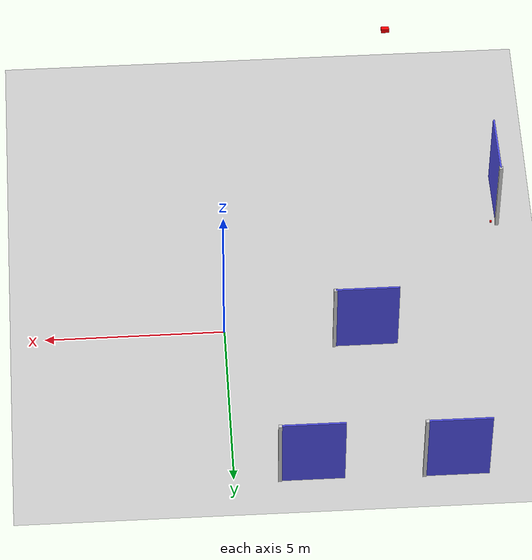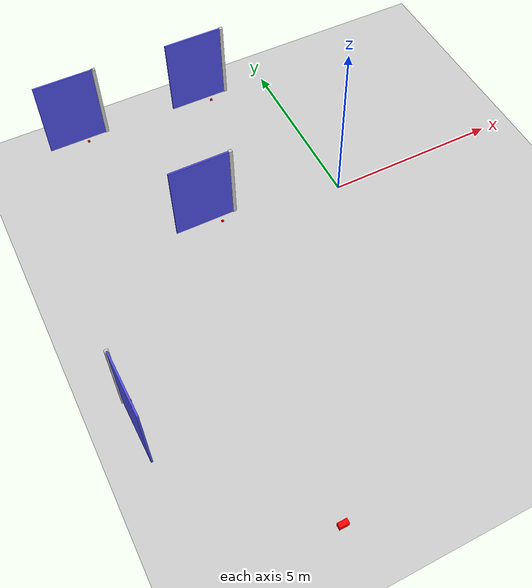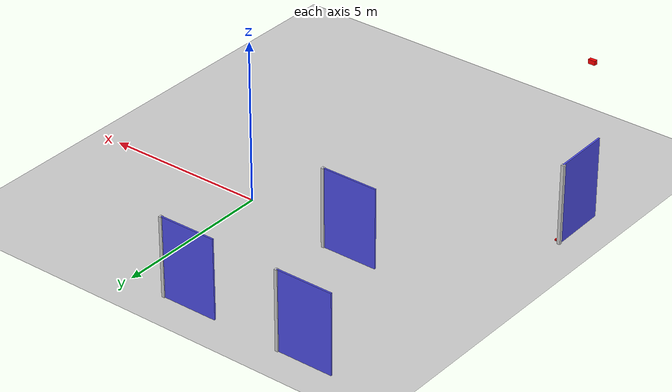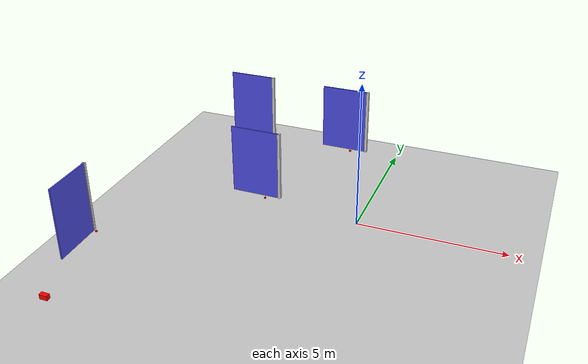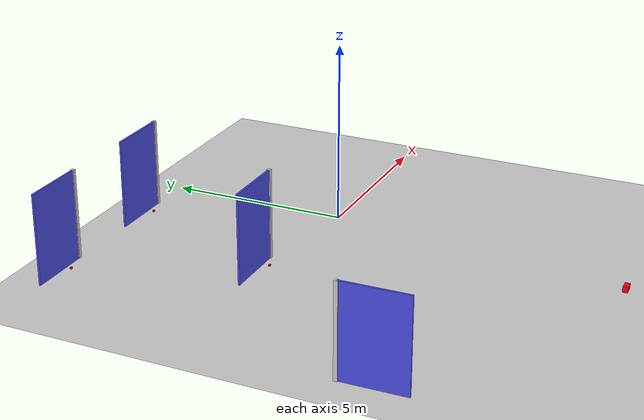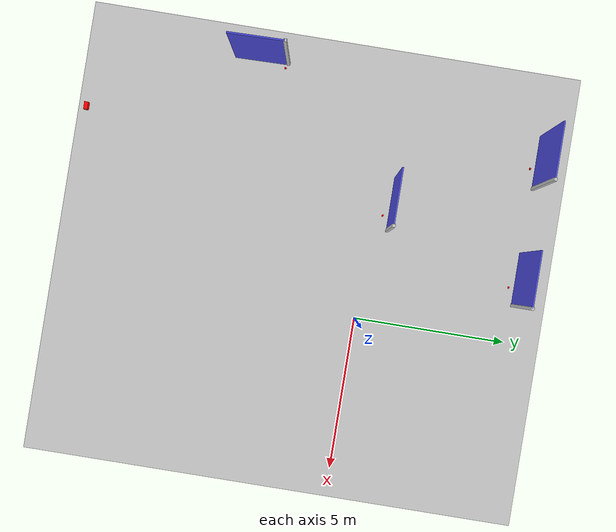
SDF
<sdf version="1.7">
 <world name="default">
  <model name="ground_plane">
   <static>1</static>
   <link name="link">
    <collision name="collision">
     <geometry><plane><normal>0 0 1</normal><size>100 100</size></plane></geometry>
     <surface><friction><ode><mu>100</mu><mu2>50</mu2></ode></friction></surface>
    </collision>
    <visual name="visual">
     <cast_shadows>0</cast_shadows>
     <geometry><plane><normal>0 0 1</normal><size>100 100</size></plane></geometry>
     <material>
      <script><uri>file://media/materials/scripts/gazebo.material</uri><name>Gazebo/Grey</name></script>
     </material>
    </visual>
   </link>
  </model>
  <model name="door_1">
   <link name="door_frame">
    <pose>0.883124 0.004995 1.25 0 -0 0</pose>
    <kinematic>1</kinematic>
    <inertial>
     <inertia><ixx>1</ixx><ixy>0</ixy><ixz>0</ixz><iyy>1</iyy><iyz>0</iyz><izz>1</izz></inertia>
     <mass>1</mass>
    </inertial>
    <visual name="frame_visual">
     <geometry><box><size>0.1 0.1 2.5</size></box></geometry>
     <material>
      <ambient>0.7 0.7 0.7 1</ambient>
      <diffuse>0.8 0.8 0.8 1</diffuse>
      <shader type="pixel"/>
      <script><name>ModelPreview_9::door_frame::frame_visual_MATERIAL_</name><uri>__default__</uri></script>
     </material>
    </visual>
    <collision name="frame_collision">
     <geometry><box><size>0.1 1 2.5</size></box></geometry>
     <surface>
      <friction>
       <ode><mu>1</mu><mu2>1</mu2><fdir1>0 0 0</fdir1><slip1>0</slip1><slip2>0</slip2></ode>
       <torsional>
        <coefficient>1</coefficient>
        <patch_radius>0</patch_radius>
        <surface_radius>0</surface_radius>
        <use_patch_radius>1</use_patch_radius>
        <ode><slip>0</slip></ode>
       </torsional>
      </friction>
      <bounce><restitution_coefficient>0</restitution_coefficient><threshold>1e+06</threshold></bounce>
      <contact>
       <collide_without_contact>0</collide_without_contact>
       <collide_without_contact_bitmask>1</collide_without_contact_bitmask>
       <collide_bitmask>1</collide_bitmask>
       <ode>
        <soft_cfm>0</soft_cfm>
        <soft_erp>0.2</soft_erp>
        <kp>1e+13</kp>
        <kd>1</kd>
        <max_vel>0.01</max_vel>
        <min_depth>0</min_depth>
       </ode>
       <bullet>
        <split_impulse>1</split_impulse>
        <split_impulse_penetration_threshold>-0.01</split_impulse_penetration_threshold>
        <soft_cfm>0</soft_cfm>
        <soft_erp>0.2</soft_erp>
        <kp>1e+13</kp>
        <kd>1</kd>
       </bullet>
      </contact>
     </surface>
    </collision>
   </link>
   <link name="door">
    <kinematic>1</kinematic>
    <pose>0 0 1.25 0 -0 0</pose>
    <inertial>
     <inertia><ixx>1.83367</ixx><ixy>0</ixy><ixz>0</ixz><iyy>2.74098</iyy><iyz>0</iyz><izz>0.90878</izz></inertia>
     <mass>3.51924</mass>
    </inertial>
    <visual name="door_visual">
     <geometry><box><size>1.75963 0.05 2.5</size></box></geometry>
     <material>
      <ambient>0.2 0.2 0.8 1</ambient>
      <diffuse>0.3 0.3 0.9 1</diffuse>
      <shader type="pixel"/>
      <script><name>ModelPreview_9::door::door_visual_MATERIAL_</name><uri>__default__</uri></script>
     </material>
    </visual>
    <collision name="door_collision">
     <geometry><box><size>1.75963 0.05 2.5</size></box></geometry>
     <surface>
      <friction>
       <ode><mu>1</mu><mu2>1</mu2><fdir1>0 0 0</fdir1><slip1>0</slip1><slip2>0</slip2></ode>
       <torsional>
        <coefficient>1</coefficient>
        <patch_radius>0</patch_radius>
        <surface_radius>0</surface_radius>
        <use_patch_radius>1</use_patch_radius>
        <ode><slip>0</slip></ode>
       </torsional>
      </friction>
      <bounce><restitution_coefficient>0</restitution_coefficient><threshold>1e+06</threshold></bounce>
      <contact>
       <collide_without_contact>0</collide_without_contact>
       <collide_without_contact_bitmask>1</collide_without_contact_bitmask>
       <collide_bitmask>1</collide_bitmask>
       <ode>
        <soft_cfm>0</soft_cfm>
        <soft_erp>0.2</soft_erp>
        <kp>1e+13</kp>
        <kd>1</kd>
        <max_vel>0.01</max_vel>
        <min_depth>0</min_depth>
       </ode>
       <bullet>
        <split_impulse>1</split_impulse>
        <split_impulse_penetration_threshold>-0.01</split_impulse_penetration_threshold>
        <soft_cfm>0</soft_cfm>
        <soft_erp>0.2</soft_erp>
        <kp>1e+13</kp>
        <kd>1</kd>
       </bullet>
      </contact>
     </surface>
    </collision>
   </link>
   <joint name="door_joint" type="prismatic">
    <parent>door_frame</parent>
    <child>door</child>
    <axis>
     <xyz>1 0 0</xyz>
     <limit><lower>0</lower><upper>2.0</upper><effort>-1</effort><velocity>-1</velocity></limit>
     <dynamics>
      <spring_reference>0</spring_reference>
      <spring_stiffness>0</spring_stiffness>
      <damping>0</damping>
      <friction>0</friction>
     </dynamics>
    </axis>
    <physics>
     <ode><limit><cfm>0</cfm><erp>0.2</erp></limit><suspension><cfm>0</cfm><erp>0.2</erp></suspension></ode>
    </physics>
   </joint>
   <static>0</static>
   <plugin name="door_control_plugin" filename="libdoor_control_plugin.so">
    <door_joint>door_joint</door_joint>
    <speed>1.0</speed>
    <open_target>1.0</open_target>
    <close_target>0.0</close_target>
   </plugin>
   <pose>-6.04028 5.14543 0 0 -0 0</pose>
  </model>
  <model name="door_2">
   <link name="door_frame">
    <pose>0.883124 0.004995 1.25 0 -0 0</pose>
    <kinematic>1</kinematic>
    <inertial>
     <inertia><ixx>1</ixx><ixy>0</ixy><ixz>0</ixz><iyy>1</iyy><iyz>0</iyz><izz>1</izz></inertia>
     <mass>1</mass>
    </inertial>
    <visual name="frame_visual">
     <geometry><box><size>0.1 0.1 2.5</size></box></geometry>
     <material>
      <ambient>0.7 0.7 0.7 1</ambient>
      <diffuse>0.8 0.8 0.8 1</diffuse>
      <shader type="pixel"/>
      <script><name>ModelPreview_9::door_frame::frame_visual_MATERIAL_</name><uri>__default__</uri></script>
     </material>
    </visual>
    <collision name="frame_collision">
     <geometry><box><size>0.1 1 2.5</size></box></geometry>
     <surface>
      <friction>
       <ode><mu>1</mu><mu2>1</mu2><fdir1>0 0 0</fdir1><slip1>0</slip1><slip2>0</slip2></ode>
       <torsional>
        <coefficient>1</coefficient>
        <patch_radius>0</patch_radius>
        <surface_radius>0</surface_radius>
        <use_patch_radius>1</use_patch_radius>
        <ode><slip>0</slip></ode>
       </torsional>
      </friction>
      <bounce><restitution_coefficient>0</restitution_coefficient><threshold>1e+06</threshold></bounce>
      <contact>
       <collide_without_contact>0</collide_without_contact>
       <collide_without_contact_bitmask>1</collide_without_contact_bitmask>
       <collide_bitmask>1</collide_bitmask>
       <ode>
        <soft_cfm>0</soft_cfm>
        <soft_erp>0.2</soft_erp>
        <kp>1e+13</kp>
        <kd>1</kd>
        <max_vel>0.01</max_vel>
        <min_depth>0</min_depth>
       </ode>
       <bullet>
        <split_impulse>1</split_impulse>
        <split_impulse_penetration_threshold>-0.01</split_impulse_penetration_threshold>
        <soft_cfm>0</soft_cfm>
        <soft_erp>0.2</soft_erp>
        <kp>1e+13</kp>
        <kd>1</kd>
       </bullet>
      </contact>
     </surface>
    </collision>
   </link>
   <link name="door">
    <kinematic>1</kinematic>
    <pose>0 0 1.25 0 -0 0</pose>
    <inertial>
     <inertia><ixx>1.83367</ixx><ixy>0</ixy><ixz>0</ixz><iyy>2.74098</iyy><iyz>0</iyz><izz>0.90878</izz></inertia>
     <mass>3.51924</mass>
    </inertial>
    <visual name="door_visual">
     <geometry><box><size>1.75963 0.05 2.5</size></box></geometry>
     <material>
      <ambient>0.2 0.2 0.8 1</ambient>
      <diffuse>0.3 0.3 0.9 1</diffuse>
      <shader type="pixel"/>
      <script><name>ModelPreview_9::door::door_visual_MATERIAL_</name><uri>__default__</uri></script>
     </material>
    </visual>
    <collision name="door_collision">
     <geometry><box><size>1.75963 0.05 2.5</size></box></geometry>
     <surface>
      <friction>
       <ode><mu>1</mu><mu2>1</mu2><fdir1>0 0 0</fdir1><slip1>0</slip1><slip2>0</slip2></ode>
       <torsional>
        <coefficient>1</coefficient>
        <patch_radius>0</patch_radius>
        <surface_radius>0</surface_radius>
        <use_patch_radius>1</use_patch_radius>
        <ode><slip>0</slip></ode>
       </torsional>
      </friction>
      <bounce><restitution_coefficient>0</restitution_coefficient><threshold>1e+06</threshold></bounce>
      <contact>
       <collide_without_contact>0</collide_without_contact>
       <collide_without_contact_bitmask>1</collide_without_contact_bitmask>
       <collide_bitmask>1</collide_bitmask>
       <ode>
        <soft_cfm>0</soft_cfm>
        <soft_erp>0.2</soft_erp>
        <kp>1e+13</kp>
        <kd>1</kd>
        <max_vel>0.01</max_vel>
        <min_depth>0</min_depth>
       </ode>
       <bullet>
        <split_impulse>1</split_impulse>
        <split_impulse_penetration_threshold>-0.01</split_impulse_penetration_threshold>
        <soft_cfm>0</soft_cfm>
        <soft_erp>0.2</soft_erp>
        <kp>1e+13</kp>
        <kd>1</kd>
       </bullet>
      </contact>
     </surface>
    </collision>
   </link>
   <joint name="door_joint" type="prismatic">
    <parent>door_frame</parent>
    <child>door</child>
    <axis>
     <xyz>1 0 0</xyz>
     <limit><lower>0</lower><upper>2.0</upper><effort>-1</effort><velocity>-1</velocity></limit>
     <dynamics>
      <spring_reference>0</spring_reference>
      <spring_stiffness>0</spring_stiffness>
      <damping>0</damping>
      <friction>0</friction>
     </dynamics>
    </axis>
    <physics>
     <ode><limit><cfm>0</cfm><erp>0.2</erp></limit><suspension><cfm>0</cfm><erp>0.2</erp></suspension></ode>
    </physics>
   </joint>
   <static>0</static>
   <plugin name="door_control_plugin" filename="libdoor_control_plugin.so">
    <door_joint>door_joint</door_joint>
    <speed>1.0</speed>
    <open_target>1.0</open_target>
    <close_target>0.0</close_target>
   </plugin>
   <pose>-2.12799 5.09201 0 0 -0 0</pose>
  </model>
  <model name="door_6">
   <link name="door_frame">
    <pose>0.883124 0.004995 1.25 0 -0 0</pose>
    <kinematic>1</kinematic>
    <inertial>
     <inertia><ixx>1</ixx><ixy>0</ixy><ixz>0</ixz><iyy>1</iyy><iyz>0</iyz><izz>1</izz></inertia>
     <mass>1</mass>
    </inertial>
    <visual name="frame_visual">
     <geometry><box><size>0.1 0.1 2.5</size></box></geometry>
     <material>
      <ambient>0.7 0.7 0.7 1</ambient>
      <diffuse>0.8 0.8 0.8 1</diffuse>
      <shader type="pixel"/>
      <script><name>ModelPreview_9::door_frame::frame_visual_MATERIAL_</name><uri>__default__</uri></script>
     </material>
    </visual>
    <collision name="frame_collision">
     <geometry><box><size>0.1 1 2.5</size></box></geometry>
     <surface>
      <friction>
       <ode><mu>1</mu><mu2>1</mu2><fdir1>0 0 0</fdir1><slip1>0</slip1><slip2>0</slip2></ode>
       <torsional>
        <coefficient>1</coefficient>
        <patch_radius>0</patch_radius>
        <surface_radius>0</surface_radius>
        <use_patch_radius>1</use_patch_radius>
        <ode><slip>0</slip></ode>
       </torsional>
      </friction>
      <bounce><restitution_coefficient>0</restitution_coefficient><threshold>1e+06</threshold></bounce>
      <contact>
       <collide_without_contact>0</collide_without_contact>
       <collide_without_contact_bitmask>1</collide_without_contact_bitmask>
       <collide_bitmask>1</collide_bitmask>
       <ode>
        <soft_cfm>0</soft_cfm>
        <soft_erp>0.2</soft_erp>
        <kp>1e+13</kp>
        <kd>1</kd>
        <max_vel>0.01</max_vel>
        <min_depth>0</min_depth>
       </ode>
       <bullet>
        <split_impulse>1</split_impulse>
        <split_impulse_penetration_threshold>-0.01</split_impulse_penetration_threshold>
        <soft_cfm>0</soft_cfm>
        <soft_erp>0.2</soft_erp>
        <kp>1e+13</kp>
        <kd>1</kd>
       </bullet>
      </contact>
     </surface>
    </collision>
   </link>
   <link name="door">
    <kinematic>1</kinematic>
    <pose>0 0 1.25 0 -0 0</pose>
    <inertial>
     <inertia><ixx>1.83367</ixx><ixy>0</ixy><ixz>0</ixz><iyy>2.74098</iyy><iyz>0</iyz><izz>0.90878</izz></inertia>
     <mass>3.51924</mass>
    </inertial>
    <visual name="door_visual">
     <geometry><box><size>1.75963 0.05 2.5</size></box></geometry>
     <material>
      <ambient>0.2 0.2 0.8 1</ambient>
      <diffuse>0.3 0.3 0.9 1</diffuse>
      <shader type="pixel"/>
      <script><name>ModelPreview_9::door::door_visual_MATERIAL_</name><uri>__default__</uri></script>
     </material>
    </visual>
    <collision name="door_collision">
     <geometry><box><size>1.75963 0.05 2.5</size></box></geometry>
     <surface>
      <friction>
       <ode><mu>1</mu><mu2>1</mu2><fdir1>0 0 0</fdir1><slip1>0</slip1><slip2>0</slip2></ode>
       <torsional>
        <coefficient>1</coefficient>
        <patch_radius>0</patch_radius>
        <surface_radius>0</surface_radius>
        <use_patch_radius>1</use_patch_radius>
        <ode><slip>0</slip></ode>
       </torsional>
      </friction>
      <bounce><restitution_coefficient>0</restitution_coefficient><threshold>1e+06</threshold></bounce>
      <contact>
       <collide_without_contact>0</collide_without_contact>
       <collide_without_contact_bitmask>1</collide_without_contact_bitmask>
       <collide_bitmask>1</collide_bitmask>
       <ode>
        <soft_cfm>0</soft_cfm>
        <soft_erp>0.2</soft_erp>
        <kp>1e+13</kp>
        <kd>1</kd>
        <max_vel>0.01</max_vel>
        <min_depth>0</min_depth>
       </ode>
       <bullet>
        <split_impulse>1</split_impulse>
        <split_impulse_penetration_threshold>-0.01</split_impulse_penetration_threshold>
        <soft_cfm>0</soft_cfm>
        <soft_erp>0.2</soft_erp>
        <kp>1e+13</kp>
        <kd>1</kd>
       </bullet>
      </contact>
     </surface>
    </collision>
   </link>
   <joint name="door_joint" type="prismatic">
    <parent>door_frame</parent>
    <child>door</child>
    <axis>
     <xyz>1 0 0</xyz>
     <limit><lower>0</lower><upper>2.0</upper><effort>-1</effort><velocity>-1</velocity></limit>
     <dynamics>
      <spring_reference>0</spring_reference>
      <spring_stiffness>0</spring_stiffness>
      <damping>0</damping>
      <friction>0</friction>
     </dynamics>
    </axis>
    <physics>
     <ode><limit><cfm>0</cfm><erp>0.2</erp></limit><suspension><cfm>0</cfm><erp>0.2</erp></suspension></ode>
    </physics>
   </joint>
   <static>0</static>
   <plugin name="door_control_plugin" filename="libdoor_control_plugin.so">
    <door_joint>door_joint</door_joint>
    <speed>1.0</speed>
    <open_target>1.0</open_target>
    <close_target>0.0</close_target>
   </plugin>
   <pose>-7.91807 -4.34683 -1e-06 -0.004413 8.5e-05 1.59015</pose>
  </model>
  <model name="door_7">
   <link name="door_frame">
    <pose>0.883124 0.004995 1.25 0 -0 0</pose>
    <kinematic>1</kinematic>
    <inertial>
     <inertia><ixx>1</ixx><ixy>0</ixy><ixz>0</ixz><iyy>1</iyy><iyz>0</iyz><izz>1</izz></inertia>
     <mass>1</mass>
    </inertial>
    <visual name="frame_visual">
     <geometry><box><size>0.1 0.1 2.5</size></box></geometry>
     <material>
      <ambient>0.7 0.7 0.7 1</ambient>
      <diffuse>0.8 0.8 0.8 1</diffuse>
      <shader type="pixel"/>
      <script><name>ModelPreview_9::door_frame::frame_visual_MATERIAL_</name><uri>__default__</uri></script>
     </material>
    </visual>
    <collision name="frame_collision">
     <geometry><box><size>0.1 1 2.5</size></box></geometry>
     <surface>
      <friction>
       <ode><mu>1</mu><mu2>1</mu2><fdir1>0 0 0</fdir1><slip1>0</slip1><slip2>0</slip2></ode>
       <torsional>
        <coefficient>1</coefficient>
        <patch_radius>0</patch_radius>
        <surface_radius>0</surface_radius>
        <use_patch_radius>1</use_patch_radius>
        <ode><slip>0</slip></ode>
       </torsional>
      </friction>
      <bounce><restitution_coefficient>0</restitution_coefficient><threshold>1e+06</threshold></bounce>
      <contact>
       <collide_without_contact>0</collide_without_contact>
       <collide_without_contact_bitmask>1</collide_without_contact_bitmask>
       <collide_bitmask>1</collide_bitmask>
       <ode>
        <soft_cfm>0</soft_cfm>
        <soft_erp>0.2</soft_erp>
        <kp>1e+13</kp>
        <kd>1</kd>
        <max_vel>0.01</max_vel>
        <min_depth>0</min_depth>
       </ode>
       <bullet>
        <split_impulse>1</split_impulse>
        <split_impulse_penetration_threshold>-0.01</split_impulse_penetration_threshold>
        <soft_cfm>0</soft_cfm>
        <soft_erp>0.2</soft_erp>
        <kp>1e+13</kp>
        <kd>1</kd>
       </bullet>
      </contact>
     </surface>
    </collision>
   </link>
   <link name="door">
    <kinematic>1</kinematic>
    <pose>0 0 1.25 0 -0 0</pose>
    <inertial>
     <inertia><ixx>1.83367</ixx><ixy>0</ixy><ixz>0</ixz><iyy>2.74098</iyy><iyz>0</iyz><izz>0.90878</izz></inertia>
     <mass>3.51924</mass>
    </inertial>
    <visual name="door_visual">
     <geometry><box><size>1.75963 0.05 2.5</size></box></geometry>
     <material>
      <ambient>0.2 0.2 0.8 1</ambient>
      <diffuse>0.3 0.3 0.9 1</diffuse>
      <shader type="pixel"/>
      <script><name>ModelPreview_9::door::door_visual_MATERIAL_</name><uri>__default__</uri></script>
     </material>
    </visual>
    <collision name="door_collision">
     <geometry><box><size>1.75963 0.05 2.5</size></box></geometry>
     <surface>
      <friction>
       <ode><mu>1</mu><mu2>1</mu2><fdir1>0 0 0</fdir1><slip1>0</slip1><slip2>0</slip2></ode>
       <torsional>
        <coefficient>1</coefficient>
        <patch_radius>0</patch_radius>
        <surface_radius>0</surface_radius>
        <use_patch_radius>1</use_patch_radius>
        <ode><slip>0</slip></ode>
       </torsional>
      </friction>
      <bounce><restitution_coefficient>0</restitution_coefficient><threshold>1e+06</threshold></bounce>
      <contact>
       <collide_without_contact>0</collide_without_contact>
       <collide_without_contact_bitmask>1</collide_without_contact_bitmask>
       <collide_bitmask>1</collide_bitmask>
       <ode>
        <soft_cfm>0</soft_cfm>
        <soft_erp>0.2</soft_erp>
        <kp>1e+13</kp>
        <kd>1</kd>
        <max_vel>0.01</max_vel>
        <min_depth>0</min_depth>
       </ode>
       <bullet>
        <split_impulse>1</split_impulse>
        <split_impulse_penetration_threshold>-0.01</split_impulse_penetration_threshold>
        <soft_cfm>0</soft_cfm>
        <soft_erp>0.2</soft_erp>
        <kp>1e+13</kp>
        <kd>1</kd>
       </bullet>
      </contact>
     </surface>
    </collision>
   </link>
   <joint name="door_joint" type="prismatic">
    <parent>door_frame</parent>
    <child>door</child>
    <axis>
     <xyz>1 0 0</xyz>
     <limit><lower>0</lower><upper>2.0</upper><effort>-1</effort><velocity>-1</velocity></limit>
     <dynamics>
      <spring_reference>0</spring_reference>
      <spring_stiffness>0</spring_stiffness>
      <damping>0</damping>
      <friction>0</friction>
     </dynamics>
    </axis>
    <physics>
     <ode><limit><cfm>0</cfm><erp>0.2</erp></limit><suspension><cfm>0</cfm><erp>0.2</erp></suspension></ode>
    </physics>
   </joint>
   <static>0</static>
   <plugin name="door_control_plugin" filename="libdoor_control_plugin.so">
    <door_joint>door_joint</door_joint>
    <speed>1.0</speed>
    <open_target>1.0</open_target>
    <close_target>0.0</close_target>
   </plugin>
   <pose>-3.91016 0.615386 0 0 -0 0</pose>
  </model>
  <model name="Lidar_3">
   <link name="link_1">
    <inertial>
     <mass>0.00014111</mass>
     <inertia><ixx>7e-08</ixx><ixy>0</ixy><ixz>0</ixz><iyy>7e-08</iyy><iyz>0</iyz><izz>6e-08</izz></inertia>
    </inertial>
    <visual name="visual">
     <geometry><box><size>0.048286 0.048861 0.059852</size></box></geometry>
     <material>
      <lighting>1</lighting>
      <script><uri>file://media/materials/scripts/gazebo.material</uri><name>Gazebo/Grey</name></script>
      <shader type="pixel"><normal_map>__default__</normal_map></shader>
      <ambient>1 0 0 1</ambient>
      <diffuse>0.7 0.7 0.7 1</diffuse>
      <specular>0.01 0.01 0.01 1</specular>
      <emissive>0 0 0 1</emissive>
     </material>
    </visual>
    <collision name="collision">
     <geometry><box><size>0.048286 0.048861 0.059852</size></box></geometry>
     <surface>
      <friction>
       <ode><mu>1</mu><mu2>1</mu2><fdir1>0 0 0</fdir1><slip1>0</slip1><slip2>0</slip2></ode>
       <torsional>
        <coefficient>1</coefficient>
        <patch_radius>0</patch_radius>
        <surface_radius>0</surface_radius>
        <use_patch_radius>1</use_patch_radius>
        <ode><slip>0</slip></ode>
       </torsional>
      </friction>
      <bounce><restitution_coefficient>0</restitution_coefficient><threshold>1e+06</threshold></bounce>
      <contact>
       <collide_without_contact>0</collide_without_contact>
       <collide_without_contact_bitmask>1</collide_without_contact_bitmask>
       <collide_bitmask>1</collide_bitmask>
       <ode>
        <soft_cfm>0</soft_cfm>
        <soft_erp>0.2</soft_erp>
        <kp>1e+13</kp>
        <kd>1</kd>
        <max_vel>0.01</max_vel>
        <min_depth>0</min_depth>
       </ode>
       <bullet>
        <split_impulse>1</split_impulse>
        <split_impulse_penetration_threshold>-0.01</split_impulse_penetration_threshold>
        <soft_cfm>0</soft_cfm>
        <soft_erp>0.2</soft_erp>
        <kp>1e+13</kp>
        <kd>1</kd>
       </bullet>
      </contact>
     </surface>
    </collision>
   </link>
   <static>0</static>
   <pose>-1.80914 4.88741 0.024141 -2.88646 -1.57073 2.8755</pose>
  </model>
  <model name="Lidar_4">
   <link name="link_1">
    <inertial>
     <mass>0.00014111</mass>
     <inertia><ixx>7e-08</ixx><ixy>0</ixy><ixz>0</ixz><iyy>7e-08</iyy><iyz>0</iyz><izz>6e-08</izz></inertia>
    </inertial>
    <visual name="visual">
     <geometry><box><size>0.048286 0.048861 0.059852</size></box></geometry>
     <material>
      <lighting>1</lighting>
      <script><uri>file://media/materials/scripts/gazebo.material</uri><name>Gazebo/Grey</name></script>
      <shader type="pixel"><normal_map>__default__</normal_map></shader>
      <ambient>1 0 0 1</ambient>
      <diffuse>0.7 0.7 0.7 1</diffuse>
      <specular>0.01 0.01 0.01 1</specular>
      <emissive>0 0 0 1</emissive>
     </material>
    </visual>
    <collision name="collision">
     <geometry><box><size>0.048286 0.048861 0.059852</size></box></geometry>
     <surface>
      <friction>
       <ode><mu>1</mu><mu2>1</mu2><fdir1>0 0 0</fdir1><slip1>0</slip1><slip2>0</slip2></ode>
       <torsional>
        <coefficient>1</coefficient>
        <patch_radius>0</patch_radius>
        <surface_radius>0</surface_radius>
        <use_patch_radius>1</use_patch_radius>
        <ode><slip>0</slip></ode>
       </torsional>
      </friction>
      <bounce><restitution_coefficient>0</restitution_coefficient><threshold>1e+06</threshold></bounce>
      <contact>
       <collide_without_contact>0</collide_without_contact>
       <collide_without_contact_bitmask>1</collide_without_contact_bitmask>
       <collide_bitmask>1</collide_bitmask>
       <ode>
        <soft_cfm>0</soft_cfm>
        <soft_erp>0.2</soft_erp>
        <kp>1e+13</kp>
        <kd>1</kd>
        <max_vel>0.01</max_vel>
        <min_depth>0</min_depth>
       </ode>
       <bullet>
        <split_impulse>1</split_impulse>
        <split_impulse_penetration_threshold>-0.01</split_impulse_penetration_threshold>
        <soft_cfm>0</soft_cfm>
        <soft_erp>0.2</soft_erp>
        <kp>1e+13</kp>
        <kd>1</kd>
       </bullet>
      </contact>
     </surface>
    </collision>
   </link>
   <static>0</static>
   <pose>-5.79549 4.96229 0.024135 -1.57806 -1.57072 1.56818</pose>
  </model>
  <model name="Lidar_5">
   <link name="link_1">
    <inertial>
     <mass>0.00014111</mass>
     <inertia><ixx>7e-08</ixx><ixy>0</ixy><ixz>0</ixz><iyy>7e-08</iyy><iyz>0</iyz><izz>6e-08</izz></inertia>
    </inertial>
    <visual name="visual">
     <geometry><box><size>0.048286 0.048861 0.059852</size></box></geometry>
     <material>
      <lighting>1</lighting>
      <script><uri>file://media/materials/scripts/gazebo.material</uri><name>Gazebo/Grey</name></script>
      <shader type="pixel"><normal_map>__default__</normal_map></shader>
      <ambient>1 0 0 1</ambient>
      <diffuse>0.7 0.7 0.7 1</diffuse>
      <specular>0.01 0.01 0.01 1</specular>
      <emissive>0 0 0 1</emissive>
     </material>
    </visual>
    <collision name="collision">
     <geometry><box><size>0.048286 0.048861 0.059852</size></box></geometry>
     <surface>
      <friction>
       <ode><mu>1</mu><mu2>1</mu2><fdir1>0 0 0</fdir1><slip1>0</slip1><slip2>0</slip2></ode>
       <torsional>
        <coefficient>1</coefficient>
        <patch_radius>0</patch_radius>
        <surface_radius>0</surface_radius>
        <use_patch_radius>1</use_patch_radius>
        <ode><slip>0</slip></ode>
       </torsional>
      </friction>
      <bounce><restitution_coefficient>0</restitution_coefficient><threshold>1e+06</threshold></bounce>
      <contact>
       <collide_without_contact>0</collide_without_contact>
       <collide_without_contact_bitmask>1</collide_without_contact_bitmask>
       <collide_bitmask>1</collide_bitmask>
       <ode>
        <soft_cfm>0</soft_cfm>
        <soft_erp>0.2</soft_erp>
        <kp>1e+13</kp>
        <kd>1</kd>
        <max_vel>0.01</max_vel>
        <min_depth>0</min_depth>
       </ode>
       <bullet>
        <split_impulse>1</split_impulse>
        <split_impulse_penetration_threshold>-0.01</split_impulse_penetration_threshold>
        <soft_cfm>0</soft_cfm>
        <soft_erp>0.2</soft_erp>
        <kp>1e+13</kp>
        <kd>1</kd>
       </bullet>
      </contact>
     </surface>
    </collision>
   </link>
   <static>0</static>
   <pose>-3.49116 0.401756 0.024141 0.339116 -1.57073 -0.335229</pose>
  </model>
  <model name="Lidar_7">
   <link name="link_1">
    <inertial>
     <mass>0.00014111</mass>
     <inertia><ixx>7e-08</ixx><ixy>0</ixy><ixz>0</ixz><iyy>7e-08</iyy><iyz>0</iyz><izz>6e-08</izz></inertia>
    </inertial>
    <visual name="visual">
     <geometry><box><size>0.048286 0.048861 0.059852</size></box></geometry>
     <material>
      <lighting>1</lighting>
      <script><uri>file://media/materials/scripts/gazebo.material</uri><name>Gazebo/Grey</name></script>
      <shader type="pixel"><normal_map>__default__</normal_map></shader>
      <ambient>1 0 0 1</ambient>
      <diffuse>0.7 0.7 0.7 1</diffuse>
      <specular>0.01 0.01 0.01 1</specular>
      <emissive>0 0 0 1</emissive>
     </material>
    </visual>
    <collision name="collision">
     <geometry><box><size>0.048286 0.048861 0.059852</size></box></geometry>
     <surface>
      <friction>
       <ode><mu>1</mu><mu2>1</mu2><fdir1>0 0 0</fdir1><slip1>0</slip1><slip2>0</slip2></ode>
       <torsional>
        <coefficient>1</coefficient>
        <patch_radius>0</patch_radius>
        <surface_radius>0</surface_radius>
        <use_patch_radius>1</use_patch_radius>
        <ode><slip>0</slip></ode>
       </torsional>
      </friction>
      <bounce><restitution_coefficient>0</restitution_coefficient><threshold>1e+06</threshold></bounce>
      <contact>
       <collide_without_contact>0</collide_without_contact>
       <collide_without_contact_bitmask>1</collide_without_contact_bitmask>
       <collide_bitmask>1</collide_bitmask>
       <ode>
        <soft_cfm>0</soft_cfm>
        <soft_erp>0.2</soft_erp>
        <kp>1e+13</kp>
        <kd>1</kd>
        <max_vel>0.01</max_vel>
        <min_depth>0</min_depth>
       </ode>
       <bullet>
        <split_impulse>1</split_impulse>
        <split_impulse_penetration_threshold>-0.01</split_impulse_penetration_threshold>
        <soft_cfm>0</soft_cfm>
        <soft_erp>0.2</soft_erp>
        <kp>1e+13</kp>
        <kd>1</kd>
       </bullet>
      </contact>
     </surface>
    </collision>
   </link>
   <static>0</static>
   <pose>-7.78251 -3.54126 0.024423 1.57073 -1e-05 0.019115</pose>
  </model>
  <model name="Camera_2">
   <link name="link_1">
    <inertial>
     <mass>0.00014152</mass>
     <inertia><ixx>8.3e-07</ixx><ixy>0</ixy><ixz>0</ixz><iyy>4e-07</iyy><iyz>0</iyz><izz>7.7e-07</izz></inertia>
    </inertial>
    <gravity>0</gravity>
    <visual name="visual">
     <geometry><box><size>0.119276 0.225925 0.14044</size></box></geometry>
     <material>
      <lighting>1</lighting>
      <script><uri>file://media/materials/scripts/gazebo.material</uri><name>Gazebo/Grey</name></script>
      <shader type="pixel"><normal_map>__default__</normal_map></shader>
      <ambient>1 0 0 1</ambient>
      <diffuse>0.7 0.7 0.7 1</diffuse>
      <specular>0.01 0.01 0.01 1</specular>
      <emissive>0 0 0 1</emissive>
     </material>
    </visual>
    <collision name="collision">
     <geometry><box><size>0.119276 0.225925 0.14044</size></box></geometry>
     <surface>
      <friction>
       <ode><mu>1</mu><mu2>1</mu2><fdir1>0 0 0</fdir1><slip1>0</slip1><slip2>0</slip2></ode>
       <torsional>
        <coefficient>1</coefficient>
        <patch_radius>0</patch_radius>
        <surface_radius>0</surface_radius>
        <use_patch_radius>1</use_patch_radius>
        <ode><slip>0</slip></ode>
       </torsional>
      </friction>
      <bounce><restitution_coefficient>0</restitution_coefficient><threshold>1e+06</threshold></bounce>
      <contact>
       <collide_without_contact>0</collide_without_contact>
       <collide_without_contact_bitmask>1</collide_without_contact_bitmask>
       <collide_bitmask>1</collide_bitmask>
       <ode>
        <soft_cfm>0</soft_cfm>
        <soft_erp>0.2</soft_erp>
        <kp>1e+13</kp>
        <kd>1</kd>
        <max_vel>0.01</max_vel>
        <min_depth>0</min_depth>
       </ode>
       <bullet>
        <split_impulse>1</split_impulse>
        <split_impulse_penetration_threshold>-0.01</split_impulse_penetration_threshold>
        <soft_cfm>0</soft_cfm>
        <soft_erp>0.2</soft_erp>
        <kp>1e+13</kp>
        <kd>1</kd>
       </bullet>
      </contact>
     </surface>
    </collision>
   </link>
   <static>0</static>
   <pose>-5.12794 -9.07551 2.20934 0.006693 -0.031961 1.57532</pose>
  </model>
 </world>
</sdf>
